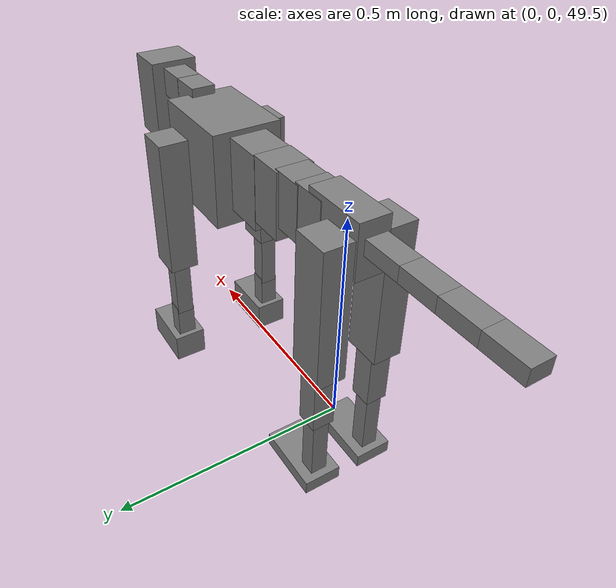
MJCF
<mujoco model="dog">

    <default>
        <joint armature="0.02" stiffness="1" damping="0.2" limited="true"/>
        <geom condim="3" friction="1 0.05 0.05" margin="0.01"/>
        <motor ctrllimited="true" ctrlrange="-1.0 1.0" forcelimited="true" gear="50"/>
    </default>

    <compiler inertiafromgeom="true" angle="radian"/>

    <option timestep="0.016" iterations="50" tolerance="1e-10" solver="Newton" jacobian="dense" cone="pyramidal"/>

    <size nconmax="20000" njmax="60000" nstack="5000000"/>
    <visual>
        <map force="0.1" zfar="30"/>
        <rgba haze="0.15 0.25 0.35 1"/>
        <quality shadowsize="2048"/>
        <global offwidth="800" offheight="800"/>
    </visual>

    <asset>
        <texture type="skybox" builtin="gradient" rgb1="0.3 0.5 0.7" rgb2="0 0 0" width="512" height="512"/>
        <texture name="texplane" type="2d" builtin="checker" rgb1=".2 .3 .4" rgb2=".1 0.15 0.2" width="512" height="512"
                 mark="cross" markrgb=".8 .8 .8"/>
        <texture name="texgeom" type="cube" builtin="flat" mark="cross" width="127" height="1278" rgb1="0.8 0.6 0.4"
                 rgb2="0.8 0.6 0.4" markrgb="1 1 1" random="0.01"/>

        <material name="matplane" reflectance="0.3" texture="texplane" texrepeat="1 1" texuniform="true"/>
        <material name="matgeom" texture="texgeom" texuniform="true" rgba="0.8 0.6 .4 1"/>
    </asset>

    <worldbody>
        <geom name="floor" pos="0 0 0" size="0 0 .25" type="plane" material="matplane" condim="3"/>

        <light directional="false" diffuse=".2 .2 .2" specular="0 0 0" pos="0 0 5" dir="0 0 -1" castshadow="false"/>
        <light mode="targetbodycom" target="torso" directional="false" diffuse=".8 .8 .8" specular="0.3 0.3 0.3"
               pos="0 0 4.0" dir="0 0 -1"/>

        <body name="root" pos="0 0 50">
            <freejoint name="root_1"/>
            <geom type="box" pos="0 0 -0.02" size="0.0774  0.0358  0.063" density="2030"/>

            <body name="spine1" pos="0.054 0 0">
                <joint name="spine1_y" axis="0 1 0" range="0 0.7" limited="true"/>
                <geom type="box" pos="0.02375 0 -0.03" size="0.04375  0.0375  0.05985" density="2030"/>

                <body name="spine2" pos="0.0612 0 0">
                    <joint name="spine2_y" axis="0 1 0" range="-0.15 0.15" limited="true"/>
                    <geom type="box" pos="0.03555  0  -0.04" size="0.04055  0.039  0.06615" density="2030"/>

                    <body name="spine3" pos="0.0730 0 0">
                        <joint name="spine3_y" axis="0 1 0" range="-0.15 0.15" limited="true"/>
                        <geom type="box" pos="0.03555  0  -0.057" size="0.04555  0.0445  0.081" density="2030"/>

                        <body name="spine4" pos="0.0780 0 0">
                            <joint name="spine4_y" axis="0 1 0" range="-0.15 0.15" limited="true"/>
                            <geom type="box" pos="0.05265  0  -0.07" size="0.05265  0.045  0.09135" density="2030"/>

                            <body name="torso" pos="0.1082 0 0">
                                <joint name="torso_y" axis="0 1 0" range="-0.15 0.15" limited="true"/>
                                <geom type="box" pos="0.11925  0  -0.085" size="0.11925  0.085  0.11745"
                                      density="2030"/>

                                <body name="neck1" pos="0.2160  0   0.0180">
                                    <joint name="neck1_y" axis="0 1 0" range="-1.2  -1" limited="true"/>
                                    <geom type="box" pos="0.0423  0  0" size="0.0423  0.03  0.036" density="2325"/>

                                    <body name="neck2" pos="0.0853  0  0">
                                        <joint name="neck2_y" axis="0 1 0" range="0.1  0" limited="true"/>
                                        <geom type="box" pos="0.0423  0  0" size="0.0423  0.03  0.036" density="2325"/>

                                        <body name="head" pos="0.0853  0  0">
                                            <joint name="head_y" axis="0 1 0" range="-0.3  -0.2" limited="true"/>
                                            <geom type="box" pos="0.0531  0  -0.055" size="0.0531  0.06  0.1044"
                                                  density="4030"/>

                                        </body>
                                    </body>
                                </body>

                                <body name="front_shoulder" pos="0.156  0   -0.0480">
                                    <joint name="front_shoulder_y" axis="0 1 0" range="-1 1.5" limited="true"/>
                                    <geom type="box" pos="0 0.13 -0.1488" size="0.0423  0.0362  0.1755" density="1158"/>
                                    <geom type="box" pos="0 -0.13 -0.1488" size="0.0423  0.0362  0.1755"
                                          density="1158"/>

                                    <body name="front_elbow" pos="0  0  -0.2977">
                                        <joint name="front_elbow_y" axis="0 1 0" range="-2 0" limited="true"/>
                                        <geom type="box" pos="0 0.13 -0.0911" size="0.0213  0.0217  0.0911"
                                              density="1081"/>
                                        <geom type="box" pos="0 -0.13 -0.0911" size="0.0213  0.0217  0.0911"
                                              density="1081"/>

                                        <body name="front_wrist" pos="0  0  -0.1821">
                                            <joint name="front_wrist_y" axis="0 1 0" range="-0.2 0" limited="true"/>
                                            <geom type="box" pos="0 0.13 -0.0441" size="0.0206  0.0229  0.0573"
                                                  density="1664"/>
                                            <geom type="box" pos="0 -0.13 -0.0441" size="0.0206  0.0229  0.0573"
                                                  density="1664"/>

                                            <body name="front_finger_end" pos="0  0  -0.0883">
                                                <joint name="front_finger_y" axis="0 1 0" range="-0.4 1"
                                                       limited="true"/>
                                                <geom type="box" pos="0.0409  0.13  -0.0224"
                                                      size="0.0750  0.0409  0.0374" density="1515"/>
                                                <geom type="box" pos="0.0409  -0.13  -0.0224"
                                                      size="0.0750  0.0409  0.0374" density="1515"/>

                                            </body>

                                        </body>
                                    </body>
                                </body>

                            </body>
                        </body>
                    </body>
                </body>
            </body>

            <body name="back_hip" pos="-0.03 0 -0.018">
                <joint name="back_hip_y" axis="0 1 0" range="-1.5 0.3" limited="true"/>
                <geom type="box" pos="0 0.07 -0.1412" size="0.0431  0.0338  0.1640" density="1154"/>
                <geom type="box" pos="0 -0.07 -0.1412" size="0.0431  0.0338  0.1640" density="1154"/>

                <body name="back_knee" pos="0  0  -0.2823">
                    <joint name="back_knee_y" axis="0 1 0" range="0 2.8" limited="true"/>
                    <geom type="box" pos="0 0.07 -0.0725" size="0.0258  0.0254  0.0881" density="1227"/>
                    <geom type="box" pos="0 -0.07 -0.0725" size="0.0258  0.0254  0.0881" density="1227"/>

                    <body name="back_ankle" pos="0  0  -0.1451">
                        <joint name="back_ankle_y" axis="0 1 0" range="-2.2 0" limited="true"/>
                        <geom type="box" pos="0 0.07 -0.0911" size="0.0193  0.0193  0.1024" density="1284"/>
                        <geom type="box" pos="0 -0.07 -0.0911" size="0.0193  0.0193  0.1024" density="1284"/>

                        <body name="back_toe_end" pos="0  0  -0.1823">
                            <joint name="back_toe_y" axis="0 1 0" range="-0.4 1" limited="true"/>
                            <geom type="box" pos="0.0439  0.07  -0.0011" size="0.0805  0.0439  0.0161" density="1515"/>
                            <geom type="box" pos="0.0439  -0.07  -0.0011" size="0.0805  0.0439  0.0161" density="1515"/>

                        </body>
                    </body>
                </body>
            </body>

            <body name="tail1" pos="-0.074 0 -0.006">
                <joint name="tail1_y" axis="0 1 0" range="-0.2 0.2" limited="true"/>
                <geom type="box" pos="-0.0536  0  0" size="0.045  0.025  0.0175" density="1587"/>

                <body name="tail2" pos="-0.09 0 0">
                    <joint name="tail2_y" axis="0 1 0" range="-0.2 0.2" limited="true"/>
                    <geom type="box" pos="-0.0536  0  0" size="0.045  0.025  0.0175" density="1587"/>

                    <body name="tail3" pos="-0.09 0 0">
                        <joint name="tail3_y" axis="0 1 0" range="-0.2 0.2" limited="true"/>
                        <geom type="box" pos="-0.0536  0  0" size="0.045  0.025  0.0175" density="1587"/>

                        <body name="tail4" pos="-0.09 0 0">
                            <joint name="tail4_y" axis="0 1 0" range="-0.2 0.2" limited="true"/>
                            <geom type="box" pos="-0.0536  0  0" size="0.045  0.025  0.0175" density="1587"/>

                        </body>
                    </body>
                </body>
            </body>
        </body>
    </worldbody>

    <actuator>
        <motor joint="spine1_y" forcerange="-150 150     "/>
        <motor joint="spine2_y" forcerange="-150 150     "/>
        <motor joint="spine3_y" forcerange="-150 150     "/>
        <motor joint="spine4_y" forcerange="-150 150     "/>
        <motor joint="torso_y" forcerange="-150 150     "/>
        <motor joint="neck1_y" forcerange="-100 100       "/>
        <motor joint="neck2_y" forcerange="-100 100       "/>
        <motor joint="head_y" forcerange="-150 150       "/>
        <motor joint="front_shoulder_y" forcerange="-155.44 185.61"/>
        <motor joint="front_elbow_y" forcerange="-135.59 122.54"/>
        <motor joint="front_wrist_y" forcerange="-126.54 56.35"/>
        <motor joint="front_finger_y" forcerange="-92.01 86.28"/>
        <motor joint="back_hip_y" forcerange="-373.31 277.53"/>
        <motor joint="back_knee_y" forcerange="-201.24 368.22"/>
        <motor joint="back_angle_y" forcerange="-106.87 101.59"/>
        <motor joint="back_toe_y" forcerange="-136.98 134.30"/>
        <motor joint="tail1_y" forcerange="-50 50     "/>
        <motor joint="tail2_y" forcerange="-50 50     "/>
        <motor joint="tail3_y" forcerange="-50 50     "/>
        <motor joint="tail4_y" forcerange="-50 50     "/>
    </actuator>
</mujoco>
